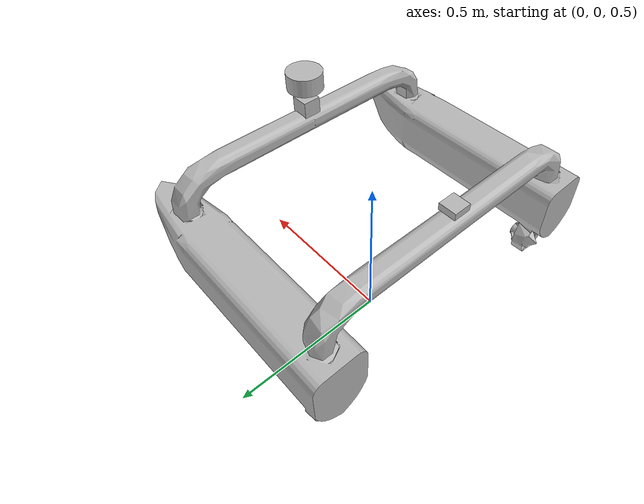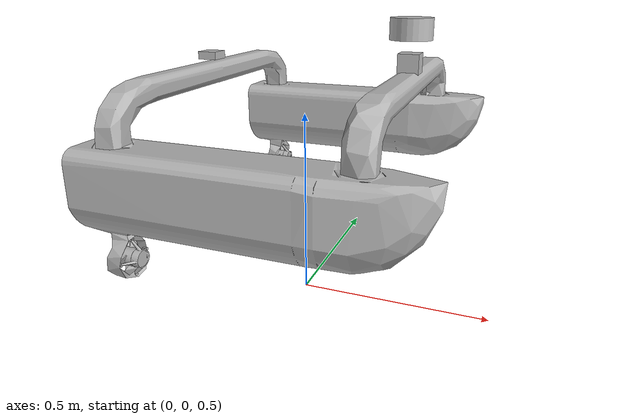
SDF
<?xml version="1.0"?>
<sdf version='1.6'>
  <model name='boatcleaningc'>
  <pose>0 0 1 0 0 0</pose>
  <static>false</static>

    <!-- Hydrodynamics plugin -->
    <plugin filename="libHydrodynamicsPlugin.so" name="hydrodynamics">
      <!-- Wave Model -->
      <wave_model>ocean_waves</wave_model>
      <!-- Hydrodynamics -->
      <damping_on>true</damping_on>
      <viscous_drag_on>true</viscous_drag_on>
      <pressure_drag_on>true</pressure_drag_on>
      <!-- Markers -->
      <markers>
        <update_rate>30</update_rate>
        <water_patch>false</water_patch>
        <waterline>false</waterline>
        <underwater_surface>false</underwater_surface>
      </markers>
    </plugin>
<physics type="ode">
  <max_step_size>0.001</max_step_size>
  <real_time_factor>1.0</real_time_factor>
</physics>

    <link name='baseboatclening'>
      <inertial>
        <pose>-0.012126 -1.1e-05 -0.05222 0 -0 0</pose>
        <mass>1.7321</mass>
        <inertia>
          <ixx>0.166153</ixx>
          <ixy>-3.9079e-05</ixy>
          <ixz>-0.0183342</ixz>
          <iyy>0.14192</iyy>
          <iyz>-2.63452e-05</iyz>
          <izz>0.184974</izz>
        </inertia>
      </inertial>
      <collision name='baseboatclening_collision'>
        <pose>0 0 0 0 -0 0</pose>
        <geometry>
          <mesh>
            <scale>1 1 1</scale>
            <uri>model://boatcleaningc/meshes/baseboatclening.STL</uri>
          </mesh>
        </geometry>
      </collision>
      <collision name='baseboatclening_fixed_joint_lump__axedroit_collision_1'>
        <pose>-0.263294 -0.401272 -0.256 -1.5708 -0.001745 -1.5708</pose>
        <geometry>
          <mesh>
            <scale>1 1 1</scale>
            <uri>model://boatcleaningc/meshes/axedroit.STL</uri>
          </mesh>
        </geometry>
      </collision>
      <collision name='baseboatclening_fixed_joint_lump__axegauche_collision_2'>
        <pose>-0.263294 0.398728 -0.256 -1.5708 -0.001745 -1.5708</pose>
        <geometry>
          <mesh>
            <scale>1 1 1</scale>
            <uri>model://boatcleaningc/meshes/axegauche.STL</uri>
          </mesh>
        </geometry>
      </collision>
      <collision name='baseboatclening_fixed_joint_lump__camera_collision_3'>
        <pose>0.265 0 0.14 0 -0 0</pose>
        <geometry>
          <box>
            <size>0.05 0.05 0.05</size>
          </box>
        </geometry>
        <surface>
          <contact>
            <ode/>
          </contact>
          <friction>
            <ode/>
          </friction>
        </surface>
      </collision>
      <collision name='baseboatclening_fixed_joint_lump__lidar_center_collision_4'>
        <pose>0.265 0 0.22 0 -0 0</pose>
        <geometry>
          <cylinder>
            <length>0.05</length>
            <radius>0.05</radius>
          </cylinder>
        </geometry>
        <surface>
          <contact>
            <ode/>
          </contact>
          <friction>
            <ode/>
          </friction>
        </surface>
      </collision>
      <collision name='baseboatclening_fixed_joint_lump__gps_link_collision_5'>
        <pose>-0.265 0 0.14 0 -0 0</pose>
        <geometry>
          <box>
            <size>0.05 0.05 0.02</size>
          </box>
        </geometry>
        <surface>
          <contact>
            <ode/>
          </contact>
          <friction>
            <ode/>
          </friction>
        </surface>
      </collision>
      <visual name='baseboatclening_visual'>
        <pose>0 0 0 0 -0 0</pose>
        <geometry>
          <mesh>
            <scale>1 1 1</scale>
            <uri>model://boatcleaningc/meshes/baseboatclening.STL</uri>
          </mesh>
        </geometry>
      </visual>
      <visual name='baseboatclening_fixed_joint_lump__axedroit_visual_1'>
        <pose>-0.263294 -0.401272 -0.256 -1.5708 -0.001745 -1.5708</pose>
        <geometry>
          <mesh>
            <scale>1 1 1</scale>
            <uri>model://boatcleaningc/meshes/axedroit.STL</uri>
          </mesh>
        </geometry>
      </visual>
      <visual name='baseboatclening_fixed_joint_lump__axegauche_visual_2'>
        <pose>-0.263294 0.398728 -0.256 -1.5708 -0.001745 -1.5708</pose>
        <geometry>
          <mesh>
            <scale>1 1 1</scale>
            <uri>model://boatcleaningc/meshes/axegauche.STL</uri>
          </mesh>
        </geometry>
      </visual>
      <visual name='baseboatclening_fixed_joint_lump__camera_visual_3'>
        <pose>0.265 0 0.14 0 -0 0</pose>
        <geometry>
          <box>
            <size>0.05 0.05 0.05</size>
          </box>
        </geometry>
      </visual>
      <visual name='baseboatclening_fixed_joint_lump__lidar_center_visual_4'>
        <pose>0.265 0 0.22 0 -0 0</pose>
        <geometry>
          <cylinder>
            <length>0.05</length>
            <radius>0.05</radius>
          </cylinder>
        </geometry>
      </visual>
      <visual name='baseboatclening_fixed_joint_lump__gps_link_visual_5'>
        <pose>-0.265 0 0.14 0 -0 0</pose>
        <geometry>
          <box>
            <size>0.05 0.05 0.02</size>
          </box>
        </geometry>
      </visual>
      <sensor name='camera_sensor' type='camera'>
        <update_rate>30</update_rate>
        <camera name='camera'>
          <horizontal_fov>2.0944</horizontal_fov>
          <image>
            <width>640</width>
            <height>480</height>
            <format>R8G8B8</format>
          </image>
          <clip>
            <near>0.1</near>
            <far>100</far>
          </clip>
        </camera>
        <plugin name='camera_controller' filename='libgazebo_ros_camera.so'>
          <alwaysOn>1</alwaysOn>
          <updateRate>30</updateRate>
          <cameraName>camera</cameraName>
          <frameName>camera</frameName>
          <imageTopicName>image_raw</imageTopicName>
          <cameraInfoTopicName>camera_info</cameraInfoTopicName>
          <hackBaseline>0.07</hackBaseline>
        </plugin>
        <pose>0.265 0 0.14 0 -0 0</pose>
      </sensor>
      <sensor name='lidar' type='ray'>
        <visualize>1</visualize>
        <update_rate>40</update_rate>
        <ray>
          <scan>
            <horizontal>
              <samples>720</samples>
              <resolution>1</resolution>
              <min_angle>-3.14159</min_angle>
              <max_angle>3.14159</max_angle>
            </horizontal>
          </scan>
          <range>
            <min>0.1</min>
            <max>10</max>
            <resolution>0.03</resolution>
          </range>
          <noise>
            <type>gaussian</type>
            <mean>0</mean>
            <stddev>0.01</stddev>
          </noise>
        </ray>
        <plugin name='gazebo_ros_laser' filename='libgazebo_ros_laser.so'>
          <topicName>/scan</topicName>
          <frameName>lidar_center</frameName>
        </plugin>
        <pose>0.265 0 0.22 0 -0 0</pose>
      </sensor>
      <sensor name='gps_sensor' type='gps'>
        <update_rate>10</update_rate>
        <plugin name='gazebo_ros_gps' filename='libgazebo_ros_gps.so'>
          <ros>
            <namespace>/</namespace>
          </ros>
          <frameName>gps_link</frameName>
          <topicName>gps/fix</topicName>
          <velocityTopicName>gps/velocity</velocityTopicName>
          <gpsReferenceLatitude>43.60345</gpsReferenceLatitude>
          <gpsReferenceLongitude>1.44283</gpsReferenceLongitude>
          <gpsReferenceAltitude>150</gpsReferenceAltitude>
          <gpsReferenceHeading>0</gpsReferenceHeading>
          <velocityRandomWalk>0.1</velocityRandomWalk>
          <positionRandomWalk>1.5</positionRandomWalk>
        </plugin>
        <pose>-0.265 0 0.14 0 -0 0</pose>
      </sensor>
    </link>
    <joint name='fandroitjoint' type='revolute'>
      <pose relative_to='baseboatclening'>-0.268799 -0.401272 -0.256 -0.003442 0 4e-06</pose>
      <parent>baseboatclening</parent>
      <child>fandroit</child>
      <axis>
        <xyz>1 0 0</xyz>
        <limit>
          <lower>-1e+16</lower>
          <upper>1e+16</upper>
        </limit>
        <dynamics>
          <spring_reference>0</spring_reference>
          <spring_stiffness>0</spring_stiffness>
        </dynamics>
      </axis>
    </joint>
    <link name='fandroit'>
      <pose relative_to='fandroitjoint'>0 0 0 0 -0 0</pose>
      <inertial>
        <pose>0.011172 -0 0 0 -0 0</pose>
        <mass>0.00795786</mass>
        <inertia>
          <ixx>3.72711e-06</ixx>
          <ixy>2.1297e-13</ixy>
          <ixz>-8.34019e-13</ixz>
          <iyy>2.39332e-06</iyy>
          <iyz>-4.61638e-10</iyz>
          <izz>2.39448e-06</izz>
        </inertia>
      </inertial>
      <collision name='fandroit_collision'>
        <pose>0 0 0 0 -0 0</pose>
        <geometry>
          <mesh>
            <scale>1 1 1</scale>
            <uri>model://boatcleaningc/meshes/fandroit.STL</uri>
          </mesh>
        </geometry>
      </collision>
      <visual name='fandroit_visual'>
        <pose>0 0 0 0 -0 0</pose>
        <geometry>
          <mesh>
            <scale>1 1 1</scale>
            <uri>model://boatcleaningc/meshes/fandroit.STL</uri>
          </mesh>
        </geometry>
      </visual>
    </link>
    <joint name='fangauchejoint' type='revolute'>
      <pose relative_to='baseboatclening'>-0.269815 0.398728 -0.256 -0.003442 0 4e-06</pose>
      <parent>baseboatclening</parent>
      <child>fangauche</child>
      <axis>
        <xyz>1 0 0</xyz>
        <limit>
          <lower>-1e+16</lower>
          <upper>1e+16</upper>
        </limit>
        <dynamics>
          <spring_reference>0</spring_reference>
          <spring_stiffness>0</spring_stiffness>
        </dynamics>
      </axis>
    </joint>
    <link name='fangauche'>
      <pose relative_to='fangauchejoint'>0 0 0 0 -0 0</pose>
      <inertial>
        <pose>0.012188 -0 0 0 -0 0</pose>
        <mass>0.00795786</mass>
        <inertia>
          <ixx>3.72711e-06</ixx>
          <ixy>2.1297e-13</ixy>
          <ixz>-8.34019e-13</ixz>
          <iyy>2.39332e-06</iyy>
          <iyz>-4.61638e-10</iyz>
          <izz>2.39448e-06</izz>
        </inertia>
      </inertial>
      <collision name='fangauche_collision'>
        <pose>0 0 0 0 -0 0</pose>
        <geometry>
          <mesh>
            <scale>1 1 1</scale>
            <uri>model://boatcleaningc/meshes/fangauche.STL</uri>
          </mesh>
        </geometry>
      </collision>
      <visual name='fangauche_visual'>
        <pose>0 0 0 0 -0 0</pose>
        <geometry>
          <mesh>
            <scale>1 1 1</scale>
            <uri>model://boatcleaningc/meshes/fangauche.STL</uri>
          </mesh>
        </geometry>
      </visual>
    </link>
    <frame name='axedroitjoint' attached_to='baseboatclening'>
      <pose>-0.263294 -0.401272 -0.256 -1.5708 -0.001745 -1.5708</pose>
    </frame>
    <frame name='axedroit' attached_to='axedroitjoint'/>
    <frame name='axegauchejoint' attached_to='baseboatclening'>
      <pose>-0.263294 0.398728 -0.256 -1.5708 -0.001745 -1.5708</pose>
    </frame>
    <frame name='axegauche' attached_to='axegauchejoint'/>
    <frame name='lidar_center_joint' attached_to='camera'>
      <pose>0 0 0.08 0 -0 0</pose>
    </frame>
    <frame name='lidar_center' attached_to='lidar_center_joint'/>
    <frame name='camera_joint' attached_to='baseboatclening'>
      <pose>0.265 0 0.14 0 -0 0</pose>
    </frame>
    <frame name='camera' attached_to='camera_joint'/>
    <frame name='gps_joint' attached_to='baseboatclening'>
      <pose>-0.265 0 0.14 0 -0 0</pose>
    </frame>
    <frame name='gps_link' attached_to='gps_joint'/>
  </model>
</sdf>
